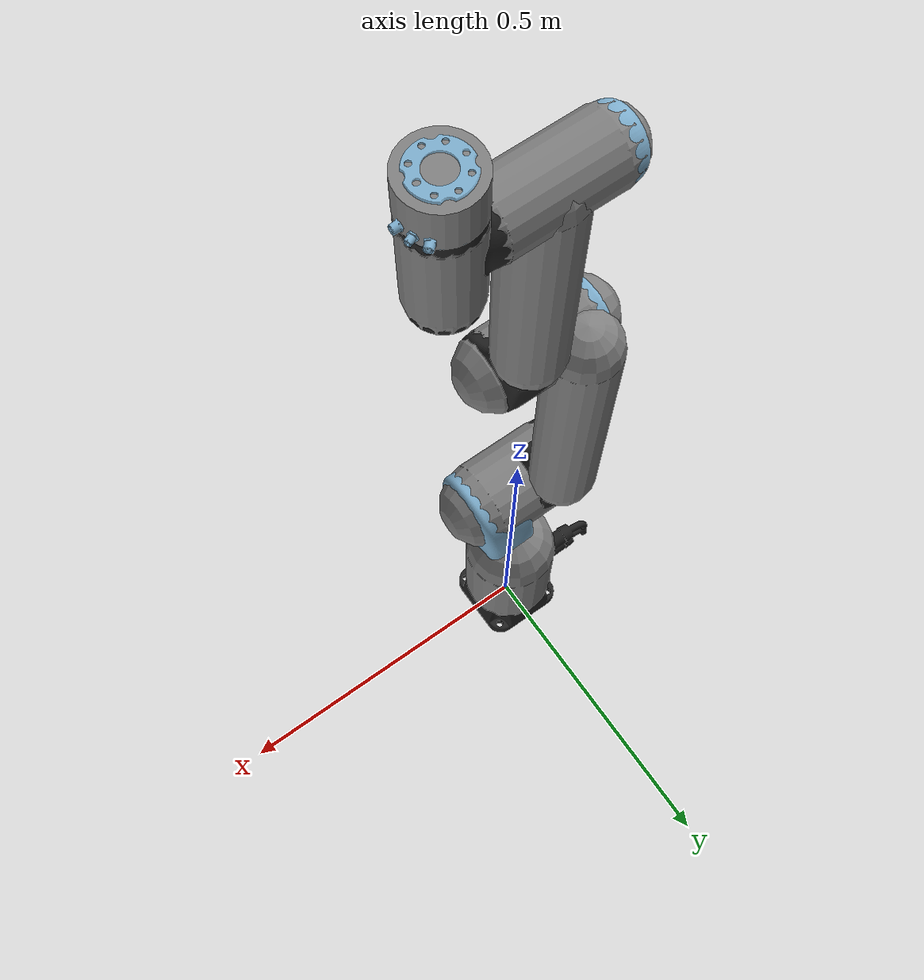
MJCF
<mujoco model="kr810">
  <compiler angle="radian" meshdir="assets" autolimits="true" />

  <option integrator="implicitfast" />

  <default>
    <default class="ur5e">
      <material specular="0.5" shininess="0.25" />
      <joint axis="0 1 0" range="-6.28319 6.28319" armature="0.1" />
      <general gaintype="fixed" biastype="affine" ctrlrange="-3 3" gainprm="2000"
        biasprm="0 -2000 -400" forcerange="-200 200" />
      <default class="size3">
        <default class="size3_limited">
          <joint range="-3.1415 3.1415" />
          <general ctrlrange="-3 3" />
        </default>
      </default>
      <default class="size1">
        <general gainprm="500" biasprm="0 -500 -100" forcerange="-28 28" />
      </default>
      <default class="visual">
        <geom type="mesh" contype="0" conaffinity="0" group="2" />
      </default>
      <default class="collision">
        <geom type="capsule" group="2" />
        <default class="eef_collision">
          <geom type="cylinder" />
        </default>
      </default>
      <site size="0.001" rgba="0.5 0.5 0.5 0.3" group="4" />
    </default>
  </default>

  <asset>
    <material class="ur5e" name="black" rgba="0.133 0.133 0.133 1" />
    <material class="ur5e" name="orange" rgba="0.95 0.330 0.010 1" />
    <material class="ur5e" name="gray" rgba="0.533 0.533 0.133 1" />

    <material class="ur5e" name="jointgray" rgba="0.278 0.278 0.278 1" />
    <material class="ur5e" name="linkgray" rgba="0.82 0.82 0.82 1" />
    <material class="ur5e" name="urblue" rgba="0.49 0.678 0.8 1" />

    <mesh file="a810_Base.obj" />
    <mesh file="a810_Flange.obj" />
    <mesh file="a810_Link2.obj" />
    <mesh file="a810_Link3.obj" />
    <mesh file="a810_Link4.obj" />
    <mesh file="a810_Link5.obj" />
    <mesh file="a810_Link6.obj" />
    <mesh file="a810_Link7.obj" />
    <mesh file="a810_ToolIO.obj" />

  </asset>

  <worldbody>
    <light name="spotlight" mode="targetbodycom" target="link2" pos="0 -1 2" />
    <body name="base" quat="1 0 0 0" childclass="ur5e">
      <inertial mass="1.0" pos="0 0 0.0157" diaginertia="0.012 0.012 0.004"/>
      <geom mesh="a810_Base" material="black" class="visual"/>
      <body name="link2" pos="0 0 0.035" quat="0.707 0 0 -0.707">
        <inertial mass="4.0" pos="0.035 0 0.23685" quat="0.985 0 0.1736 0" diaginertia="0.017 0.017 0.008"/>
        <joint name="joint1" class="size3" axis="0 0 1"/> <!-- base to link2 -->
        <geom mesh="a810_Link2" material="urblue" class="visual" pos = "0 0 0.169"/>
        <geom type="cylinder" size="0.015 0.075" pos="0.05 -0.01 0.275" euler="1.570796326795 0 0" material="orange"/>
        <geom class="collision" size="0.07 0.07" pos="0 0 0.10"/>
        <body name="link3" pos="0.05 0.0 0.275" quat="1 0 0 0">
          <inertial mass="6.53" pos="-0.015 -0.09 0.105" quat="0.99915 0 -0.1305 0" diaginertia="0.05 0.05 0.008"/>
          <joint name="joint2" class="size3" axis="0 1 0"/> <!-- link2 to link3 -->
          <geom mesh="a810_Link3" material="black" class="visual" pos="-0.000 -0.085 0.00" quat="0.5 -0.5 0.5 -0.5"/>
          <geom class="collision" pos="0 -0.04 0" quat="1 1 0 0" size="0.065 0.06"/>
          <body name="link4" pos="-0.05 -0.085 0.25">
            <inertial mass="2.9" pos="0.015 0 0.10" quat="0.99915 0 0.1305 0" diaginertia="0.015 0.015 0.005"/>
            <joint name="joint3" class="size3_limited" axis="0 0 1"/> <!-- link3 to link4 -->
            <geom mesh="a810_Link4" material="urblue" class="visual" pos="-0.049 +0.000 0.339" quat="0.5 0.5 -0.5 -0.5"/>
            <geom class="collision" pos="0 0.00 0" quat="1 0 0 0" size="0.049 0.18"/>
            <body name="link5" pos="0.041 0 0.173" quat="1 0 0 0">
              <inertial mass="6.13" pos="-0.02 +0.09 0.15" quat="0.99915 0 -0.08 0" diaginertia="0.07 0.07 0.005"/>
              <joint name="joint4" class="size1" axis="0 1 0"/>
              <geom mesh="a810_Link5" material="black" class="visual" pos="0.0 0.085 0.000" quat="0.5 -0.5 -0.5 0.5"/>
              <geom type="cylinder" size="0.015 0.075" pos="0 0.0238 0" euler="1.570796326795 0 0" material="orange"/>
              <geom class="collision" pos="0 0.04 0" quat="1 1 0 0" size="0.052 0.06"/>
              <body name="link6" pos="-0.04 0.085 0.331" quat="1 0 0 0">
                <inertial mass="1.6" pos="0 0. 0.05" diaginertia="0.005 0.001 0.005"/>
                <joint name="joint5" axis="0 0 1" class="size1"/>
                <geom mesh="a810_Link6" material="urblue" class="visual" pos="0 0.001 0.047" quat="0.7071068 0 0 -0.7071068"/>
                <geom class="collision" size="0.045 0.14" pos="0 0 -0.10"/>
                <geom class="collision" size="0.041 0.065" pos="0 0 0.047" quat="1 1 0 0"/>
                <body name="link7" pos="0 0.05 0.047" quat="1 0 0 0">
                  <inertial mass="1.6" pos="0 0.06 -0.02" quat="1 0 0 1" diaginertia="0.003 0.003 0.001"/>
                  <joint name="joint6" class="size1" axis="0 1 0"/>
                  <geom mesh="a810_Link7" material="black" class="visual" pos="0 0.06 0.0" quat="1 0 0 0"/>
                  <geom class="collision" size="0.041 0.055" pos="0 0.06 -0.01"/>
                  <body name="toolIO" pos="0 0.06 0.050">
                  	<inertial mass="0.56" pos="0 0 0.02" quat="1 0 0 1" diaginertia="0.0004 0.0004 0.0005"/>
                    <joint name="joint7" class="size1" axis="0 0 1"/>
                    <geom mesh="a810_ToolIO" material="urblue" class="visual" pos="0 0 0.057" quat="1 0 0 0"/>
                    <geom class="eef_collision" pos="0 0.0 0.032" quat="1 0 0 0" size="0.041 0.023"/>
                    <site name="attachment_site" pos="0 0.1 0" quat="-1 1 0 0"/>
                  </body>
                </body>
              </body>
            </body>
          </body>
        </body>
      </body>
    </body>
  </worldbody>

  <actuator>
    <velocity class="size3" name="joint1" joint="joint1" kv="50000" />
    <velocity class="size3" name="joint2" joint="joint2" kv="50000" />
    <velocity class="size3" name="joint3" joint="joint3" kv="50000" />
    <velocity class="size1" name="joint4" joint="joint4" kv="50000" />
    <velocity class="size1" name="joint5" joint="joint5" kv="50000" />
    <velocity class="size1" name="joint6" joint="joint6" kv="50000" />
    <velocity class="size1" name="joint7" joint="joint7" kv="50000" />
  </actuator>

  <keyframe>
    <key name="home" qpos="0 0 0 0 0 0 0" ctrl="0 0 0 0 0 0 0" />
  </keyframe>

</mujoco>
